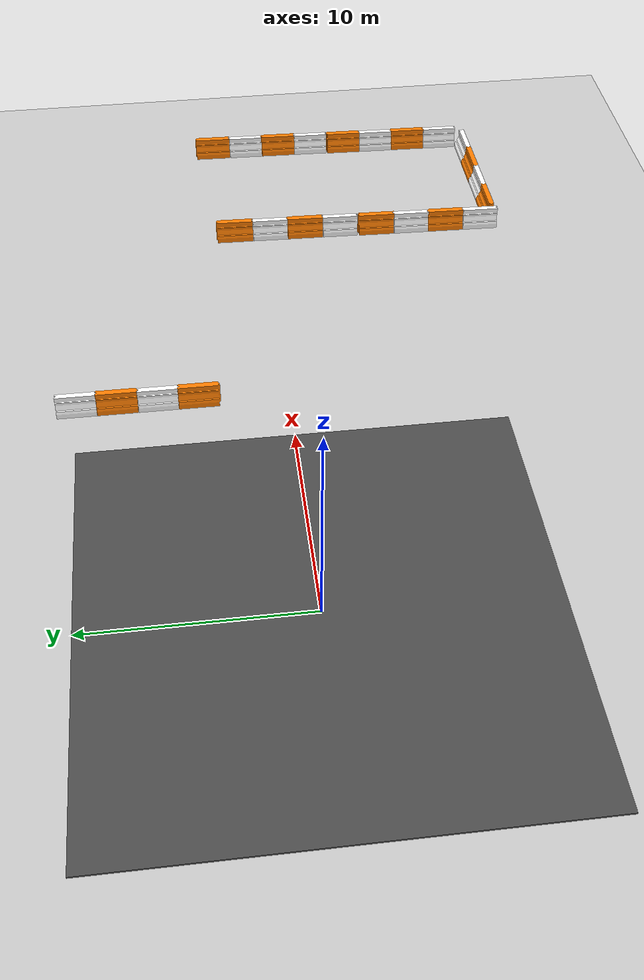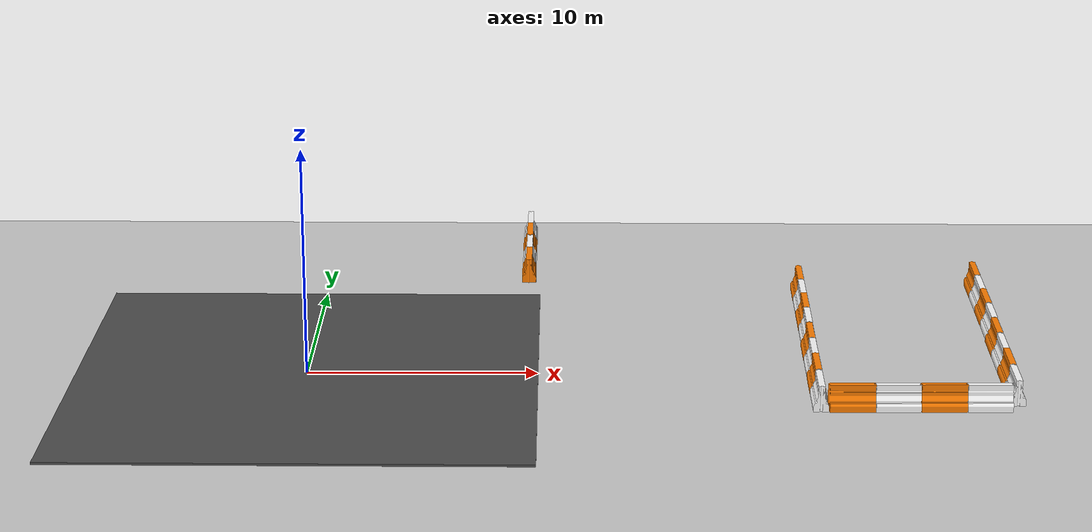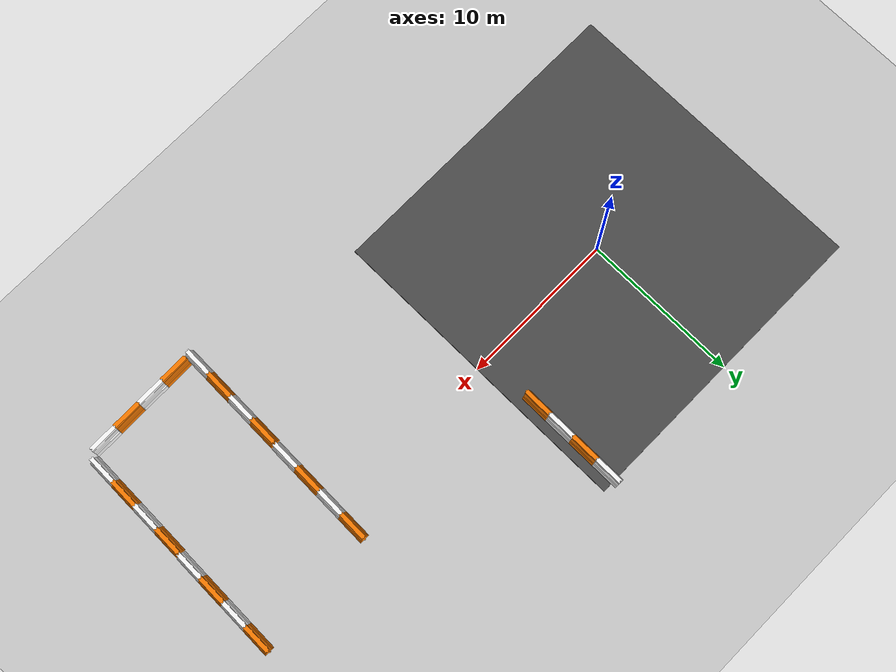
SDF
<sdf version="1.7">
 <world name="default">
  <model name="ground_plane">
   <static>1</static>
   <link name="link">
    <collision name="collision">
     <geometry><plane><normal>0 0 1</normal><size>100 100</size></plane></geometry>
     <surface><friction><ode><mu>100</mu><mu2>50</mu2></ode></friction></surface>
    </collision>
    <visual name="visual">
     <cast_shadows>0</cast_shadows>
     <geometry><plane><normal>0 0 1</normal><size>100 100</size></plane></geometry>
     <material>
      <script><uri>file://media/materials/scripts/gazebo.material</uri><name>Gazebo/Grey</name></script>
     </material>
    </visual>
   </link>
  </model>
  <model name="asphalt_plane">
   <static>1</static>
   <link name="link">
    <collision name="collision"><geometry><box><size>20 20 0.1</size></box></geometry></collision>
    <visual name="visual">
     <cast_shadows>0</cast_shadows>
     <geometry><box><size>20 20 0.1</size></box></geometry>
     <material>
      <script>
       <uri>model://asphalt_plane/materials/scripts</uri>
       <uri>model://asphalt_plane/materials/textures</uri>
       <name>vrc/asphalt</name>
      </script>
     </material>
    </visual>
   </link>
  </model>
  <model name="barrier_clone_clone">
   <link name="link">
    <pose>10.1496 5.51614 0 0 0 -0.785398</pose>
    <visual name="visual">
     <geometry>
      <mesh><uri>model://drc_practice_white_jersey_barrier/meshes/jersey_barrier.dae</uri></mesh>
     </geometry>
     <material><shader type="pixel"/></material>
    </visual>
    <collision name="collision">
     <geometry>
      <mesh>
       <uri>/home/ngc/.gazebo/models/drc_practice_white_jersey_barrier/meshes/jersey_barrier.dae</uri>
       <scale>1 1 1</scale>
      </mesh>
     </geometry>
     <surface>
      <friction>
       <ode><mu>1</mu><mu2>1</mu2><fdir1>0 0 0</fdir1><slip1>0</slip1><slip2>0</slip2></ode>
       <torsional>
        <coefficient>1</coefficient>
        <patch_radius>0</patch_radius>
        <surface_radius>0</surface_radius>
        <use_patch_radius>1</use_patch_radius>
        <ode><slip>0</slip></ode>
       </torsional>
      </friction>
      <bounce><restitution_coefficient>0</restitution_coefficient><threshold>1e+06</threshold></bounce>
      <contact>
       <collide_without_contact>0</collide_without_contact>
       <collide_without_contact_bitmask>1</collide_without_contact_bitmask>
       <collide_bitmask>1</collide_bitmask>
       <ode>
        <soft_cfm>0</soft_cfm>
        <soft_erp>0.2</soft_erp>
        <kp>1e+13</kp>
        <kd>1</kd>
        <max_vel>0.01</max_vel>
        <min_depth>0</min_depth>
       </ode>
       <bullet>
        <split_impulse>1</split_impulse>
        <split_impulse_penetration_threshold>-0.01</split_impulse_penetration_threshold>
        <soft_cfm>0</soft_cfm>
        <soft_erp>0.2</soft_erp>
        <kp>1e+13</kp>
        <kd>1</kd>
       </bullet>
      </contact>
     </surface>
    </collision>
   </link>
   <link name="five::link">
    <pose>6.3884 1.79074 0 0 0 -0.785398</pose>
    <visual name="visual">
     <geometry>
      <mesh><uri>model://drc_practice_orange_jersey_barrier/meshes/jersey_barrier.dae</uri></mesh>
     </geometry>
     <material><shader type="pixel"/></material>
    </visual>
    <collision name="collision">
     <geometry>
      <mesh>
       <uri>/home/ngc/.gazebo/models/drc_practice_orange_jersey_barrier/meshes/jersey_barrier.dae</uri>
       <scale>1 1 1</scale>
      </mesh>
     </geometry>
     <surface>
      <friction>
       <ode><mu>1</mu><mu2>1</mu2><fdir1>0 0 0</fdir1><slip1>0</slip1><slip2>0</slip2></ode>
       <torsional>
        <coefficient>1</coefficient>
        <patch_radius>0</patch_radius>
        <surface_radius>0</surface_radius>
        <use_patch_radius>1</use_patch_radius>
        <ode><slip>0</slip></ode>
       </torsional>
      </friction>
      <bounce><restitution_coefficient>0</restitution_coefficient><threshold>1e+06</threshold></bounce>
      <contact>
       <collide_without_contact>0</collide_without_contact>
       <collide_without_contact_bitmask>1</collide_without_contact_bitmask>
       <collide_bitmask>1</collide_bitmask>
       <ode>
        <soft_cfm>0</soft_cfm>
        <soft_erp>0.2</soft_erp>
        <kp>1e+13</kp>
        <kd>1</kd>
        <max_vel>0.01</max_vel>
        <min_depth>0</min_depth>
       </ode>
       <bullet>
        <split_impulse>1</split_impulse>
        <split_impulse_penetration_threshold>-0.01</split_impulse_penetration_threshold>
        <soft_cfm>0</soft_cfm>
        <soft_erp>0.2</soft_erp>
        <kp>1e+13</kp>
        <kd>1</kd>
       </bullet>
      </contact>
     </surface>
    </collision>
   </link>
   <link name="seven::link">
    <pose>8.89611 4.27529 0 0 0 -0.785398</pose>
    <visual name="visual">
     <geometry>
      <mesh><uri>model://drc_practice_orange_jersey_barrier/meshes/jersey_barrier.dae</uri></mesh>
     </geometry>
     <material><shader type="pixel"/></material>
    </visual>
    <collision name="collision">
     <geometry>
      <mesh>
       <uri>/home/ngc/.gazebo/models/drc_practice_orange_jersey_barrier/meshes/jersey_barrier.dae</uri>
       <scale>1 1 1</scale>
      </mesh>
     </geometry>
     <surface>
      <friction>
       <ode><mu>1</mu><mu2>1</mu2><fdir1>0 0 0</fdir1><slip1>0</slip1><slip2>0</slip2></ode>
       <torsional>
        <coefficient>1</coefficient>
        <patch_radius>0</patch_radius>
        <surface_radius>0</surface_radius>
        <use_patch_radius>1</use_patch_radius>
        <ode><slip>0</slip></ode>
       </torsional>
      </friction>
      <bounce><restitution_coefficient>0</restitution_coefficient><threshold>1e+06</threshold></bounce>
      <contact>
       <collide_without_contact>0</collide_without_contact>
       <collide_without_contact_bitmask>1</collide_without_contact_bitmask>
       <collide_bitmask>1</collide_bitmask>
       <ode>
        <soft_cfm>0</soft_cfm>
        <soft_erp>0.2</soft_erp>
        <kp>1e+13</kp>
        <kd>1</kd>
        <max_vel>0.01</max_vel>
        <min_depth>0</min_depth>
       </ode>
       <bullet>
        <split_impulse>1</split_impulse>
        <split_impulse_penetration_threshold>-0.01</split_impulse_penetration_threshold>
        <soft_cfm>0</soft_cfm>
        <soft_erp>0.2</soft_erp>
        <kp>1e+13</kp>
        <kd>1</kd>
       </bullet>
      </contact>
     </surface>
    </collision>
   </link>
   <link name="six::link">
    <pose>7.6423 3.03258 0 0 0 -0.785398</pose>
    <visual name="visual">
     <geometry>
      <mesh><uri>model://drc_practice_white_jersey_barrier/meshes/jersey_barrier.dae</uri></mesh>
     </geometry>
     <material><shader type="pixel"/></material>
    </visual>
    <collision name="collision">
     <geometry>
      <mesh>
       <uri>/home/ngc/.gazebo/models/drc_practice_white_jersey_barrier/meshes/jersey_barrier.dae</uri>
       <scale>1 1 1</scale>
      </mesh>
     </geometry>
     <surface>
      <friction>
       <ode><mu>1</mu><mu2>1</mu2><fdir1>0 0 0</fdir1><slip1>0</slip1><slip2>0</slip2></ode>
       <torsional>
        <coefficient>1</coefficient>
        <patch_radius>0</patch_radius>
        <surface_radius>0</surface_radius>
        <use_patch_radius>1</use_patch_radius>
        <ode><slip>0</slip></ode>
       </torsional>
      </friction>
      <bounce><restitution_coefficient>0</restitution_coefficient><threshold>1e+06</threshold></bounce>
      <contact>
       <collide_without_contact>0</collide_without_contact>
       <collide_without_contact_bitmask>1</collide_without_contact_bitmask>
       <collide_bitmask>1</collide_bitmask>
       <ode>
        <soft_cfm>0</soft_cfm>
        <soft_erp>0.2</soft_erp>
        <kp>1e+13</kp>
        <kd>1</kd>
        <max_vel>0.01</max_vel>
        <min_depth>0</min_depth>
       </ode>
       <bullet>
        <split_impulse>1</split_impulse>
        <split_impulse_penetration_threshold>-0.01</split_impulse_penetration_threshold>
        <soft_cfm>0</soft_cfm>
        <soft_erp>0.2</soft_erp>
        <kp>1e+13</kp>
        <kd>1</kd>
       </bullet>
      </contact>
     </surface>
    </collision>
   </link>
   <static>1</static>
   <pose>6.3342 -1.56565 3 0 -0 0.78886</pose>
  </model>
  <model name="barrier_clone_0_clone">
   <link name="link">
    <pose>10.1496 5.51614 0 0 0 -0.785398</pose>
    <visual name="visual">
     <geometry>
      <mesh><uri>model://drc_practice_white_jersey_barrier/meshes/jersey_barrier.dae</uri></mesh>
     </geometry>
     <material><shader type="pixel"/></material>
    </visual>
    <collision name="collision">
     <geometry>
      <mesh>
       <uri>/home/ngc/.gazebo/models/drc_practice_white_jersey_barrier/meshes/jersey_barrier.dae</uri>
       <scale>1 1 1</scale>
      </mesh>
     </geometry>
     <surface>
      <friction>
       <ode><mu>1</mu><mu2>1</mu2><fdir1>0 0 0</fdir1><slip1>0</slip1><slip2>0</slip2></ode>
       <torsional>
        <coefficient>1</coefficient>
        <patch_radius>0</patch_radius>
        <surface_radius>0</surface_radius>
        <use_patch_radius>1</use_patch_radius>
        <ode><slip>0</slip></ode>
       </torsional>
      </friction>
      <bounce><restitution_coefficient>0</restitution_coefficient><threshold>1e+06</threshold></bounce>
      <contact>
       <collide_without_contact>0</collide_without_contact>
       <collide_without_contact_bitmask>1</collide_without_contact_bitmask>
       <collide_bitmask>1</collide_bitmask>
       <ode>
        <soft_cfm>0</soft_cfm>
        <soft_erp>0.2</soft_erp>
        <kp>1e+13</kp>
        <kd>1</kd>
        <max_vel>0.01</max_vel>
        <min_depth>0</min_depth>
       </ode>
       <bullet>
        <split_impulse>1</split_impulse>
        <split_impulse_penetration_threshold>-0.01</split_impulse_penetration_threshold>
        <soft_cfm>0</soft_cfm>
        <soft_erp>0.2</soft_erp>
        <kp>1e+13</kp>
        <kd>1</kd>
       </bullet>
      </contact>
     </surface>
    </collision>
   </link>
   <link name="five::link">
    <pose>6.3884 1.79074 0 0 0 -0.785398</pose>
    <visual name="visual">
     <geometry>
      <mesh><uri>model://drc_practice_orange_jersey_barrier/meshes/jersey_barrier.dae</uri></mesh>
     </geometry>
     <material><shader type="pixel"/></material>
    </visual>
    <collision name="collision">
     <geometry>
      <mesh>
       <uri>/home/ngc/.gazebo/models/drc_practice_orange_jersey_barrier/meshes/jersey_barrier.dae</uri>
       <scale>1 1 1</scale>
      </mesh>
     </geometry>
     <surface>
      <friction>
       <ode><mu>1</mu><mu2>1</mu2><fdir1>0 0 0</fdir1><slip1>0</slip1><slip2>0</slip2></ode>
       <torsional>
        <coefficient>1</coefficient>
        <patch_radius>0</patch_radius>
        <surface_radius>0</surface_radius>
        <use_patch_radius>1</use_patch_radius>
        <ode><slip>0</slip></ode>
       </torsional>
      </friction>
      <bounce><restitution_coefficient>0</restitution_coefficient><threshold>1e+06</threshold></bounce>
      <contact>
       <collide_without_contact>0</collide_without_contact>
       <collide_without_contact_bitmask>1</collide_without_contact_bitmask>
       <collide_bitmask>1</collide_bitmask>
       <ode>
        <soft_cfm>0</soft_cfm>
        <soft_erp>0.2</soft_erp>
        <kp>1e+13</kp>
        <kd>1</kd>
        <max_vel>0.01</max_vel>
        <min_depth>0</min_depth>
       </ode>
       <bullet>
        <split_impulse>1</split_impulse>
        <split_impulse_penetration_threshold>-0.01</split_impulse_penetration_threshold>
        <soft_cfm>0</soft_cfm>
        <soft_erp>0.2</soft_erp>
        <kp>1e+13</kp>
        <kd>1</kd>
       </bullet>
      </contact>
     </surface>
    </collision>
   </link>
   <link name="seven::link">
    <pose>8.89611 4.27529 0 0 0 -0.785398</pose>
    <visual name="visual">
     <geometry>
      <mesh><uri>model://drc_practice_orange_jersey_barrier/meshes/jersey_barrier.dae</uri></mesh>
     </geometry>
     <material><shader type="pixel"/></material>
    </visual>
    <collision name="collision">
     <geometry>
      <mesh>
       <uri>/home/ngc/.gazebo/models/drc_practice_orange_jersey_barrier/meshes/jersey_barrier.dae</uri>
       <scale>1 1 1</scale>
      </mesh>
     </geometry>
     <surface>
      <friction>
       <ode><mu>1</mu><mu2>1</mu2><fdir1>0 0 0</fdir1><slip1>0</slip1><slip2>0</slip2></ode>
       <torsional>
        <coefficient>1</coefficient>
        <patch_radius>0</patch_radius>
        <surface_radius>0</surface_radius>
        <use_patch_radius>1</use_patch_radius>
        <ode><slip>0</slip></ode>
       </torsional>
      </friction>
      <bounce><restitution_coefficient>0</restitution_coefficient><threshold>1e+06</threshold></bounce>
      <contact>
       <collide_without_contact>0</collide_without_contact>
       <collide_without_contact_bitmask>1</collide_without_contact_bitmask>
       <collide_bitmask>1</collide_bitmask>
       <ode>
        <soft_cfm>0</soft_cfm>
        <soft_erp>0.2</soft_erp>
        <kp>1e+13</kp>
        <kd>1</kd>
        <max_vel>0.01</max_vel>
        <min_depth>0</min_depth>
       </ode>
       <bullet>
        <split_impulse>1</split_impulse>
        <split_impulse_penetration_threshold>-0.01</split_impulse_penetration_threshold>
        <soft_cfm>0</soft_cfm>
        <soft_erp>0.2</soft_erp>
        <kp>1e+13</kp>
        <kd>1</kd>
       </bullet>
      </contact>
     </surface>
    </collision>
   </link>
   <link name="six::link">
    <pose>7.6423 3.03258 0 0 0 -0.785398</pose>
    <visual name="visual">
     <geometry>
      <mesh><uri>model://drc_practice_white_jersey_barrier/meshes/jersey_barrier.dae</uri></mesh>
     </geometry>
     <material><shader type="pixel"/></material>
    </visual>
    <collision name="collision">
     <geometry>
      <mesh>
       <uri>/home/ngc/.gazebo/models/drc_practice_white_jersey_barrier/meshes/jersey_barrier.dae</uri>
       <scale>1 1 1</scale>
      </mesh>
     </geometry>
     <surface>
      <friction>
       <ode><mu>1</mu><mu2>1</mu2><fdir1>0 0 0</fdir1><slip1>0</slip1><slip2>0</slip2></ode>
       <torsional>
        <coefficient>1</coefficient>
        <patch_radius>0</patch_radius>
        <surface_radius>0</surface_radius>
        <use_patch_radius>1</use_patch_radius>
        <ode><slip>0</slip></ode>
       </torsional>
      </friction>
      <bounce><restitution_coefficient>0</restitution_coefficient><threshold>1e+06</threshold></bounce>
      <contact>
       <collide_without_contact>0</collide_without_contact>
       <collide_without_contact_bitmask>1</collide_without_contact_bitmask>
       <collide_bitmask>1</collide_bitmask>
       <ode>
        <soft_cfm>0</soft_cfm>
        <soft_erp>0.2</soft_erp>
        <kp>1e+13</kp>
        <kd>1</kd>
        <max_vel>0.01</max_vel>
        <min_depth>0</min_depth>
       </ode>
       <bullet>
        <split_impulse>1</split_impulse>
        <split_impulse_penetration_threshold>-0.01</split_impulse_penetration_threshold>
        <soft_cfm>0</soft_cfm>
        <soft_erp>0.2</soft_erp>
        <kp>1e+13</kp>
        <kd>1</kd>
       </bullet>
      </contact>
     </surface>
    </collision>
   </link>
   <static>1</static>
   <pose>32.3527 8.10174 3 0 0 -2.37547</pose>
  </model>
  <model name="barrier_clone_0_clone_clone">
   <link name="link">
    <pose>10.1496 5.51614 0 0 0 -0.785398</pose>
    <visual name="visual">
     <geometry>
      <mesh><uri>model://drc_practice_white_jersey_barrier/meshes/jersey_barrier.dae</uri></mesh>
     </geometry>
     <material><shader type="pixel"/></material>
    </visual>
    <collision name="collision">
     <geometry>
      <mesh>
       <uri>/home/ngc/.gazebo/models/drc_practice_white_jersey_barrier/meshes/jersey_barrier.dae</uri>
       <scale>1 1 1</scale>
      </mesh>
     </geometry>
     <surface>
      <friction>
       <ode><mu>1</mu><mu2>1</mu2><fdir1>0 0 0</fdir1><slip1>0</slip1><slip2>0</slip2></ode>
       <torsional>
        <coefficient>1</coefficient>
        <patch_radius>0</patch_radius>
        <surface_radius>0</surface_radius>
        <use_patch_radius>1</use_patch_radius>
        <ode><slip>0</slip></ode>
       </torsional>
      </friction>
      <bounce><restitution_coefficient>0</restitution_coefficient><threshold>1e+06</threshold></bounce>
      <contact>
       <collide_without_contact>0</collide_without_contact>
       <collide_without_contact_bitmask>1</collide_without_contact_bitmask>
       <collide_bitmask>1</collide_bitmask>
       <ode>
        <soft_cfm>0</soft_cfm>
        <soft_erp>0.2</soft_erp>
        <kp>1e+13</kp>
        <kd>1</kd>
        <max_vel>0.01</max_vel>
        <min_depth>0</min_depth>
       </ode>
       <bullet>
        <split_impulse>1</split_impulse>
        <split_impulse_penetration_threshold>-0.01</split_impulse_penetration_threshold>
        <soft_cfm>0</soft_cfm>
        <soft_erp>0.2</soft_erp>
        <kp>1e+13</kp>
        <kd>1</kd>
       </bullet>
      </contact>
     </surface>
    </collision>
   </link>
   <link name="five::link">
    <pose>6.3884 1.79074 0 0 0 -0.785398</pose>
    <visual name="visual">
     <geometry>
      <mesh><uri>model://drc_practice_orange_jersey_barrier/meshes/jersey_barrier.dae</uri></mesh>
     </geometry>
     <material><shader type="pixel"/></material>
    </visual>
    <collision name="collision">
     <geometry>
      <mesh>
       <uri>/home/ngc/.gazebo/models/drc_practice_orange_jersey_barrier/meshes/jersey_barrier.dae</uri>
       <scale>1 1 1</scale>
      </mesh>
     </geometry>
     <surface>
      <friction>
       <ode><mu>1</mu><mu2>1</mu2><fdir1>0 0 0</fdir1><slip1>0</slip1><slip2>0</slip2></ode>
       <torsional>
        <coefficient>1</coefficient>
        <patch_radius>0</patch_radius>
        <surface_radius>0</surface_radius>
        <use_patch_radius>1</use_patch_radius>
        <ode><slip>0</slip></ode>
       </torsional>
      </friction>
      <bounce><restitution_coefficient>0</restitution_coefficient><threshold>1e+06</threshold></bounce>
      <contact>
       <collide_without_contact>0</collide_without_contact>
       <collide_without_contact_bitmask>1</collide_without_contact_bitmask>
       <collide_bitmask>1</collide_bitmask>
       <ode>
        <soft_cfm>0</soft_cfm>
        <soft_erp>0.2</soft_erp>
        <kp>1e+13</kp>
        <kd>1</kd>
        <max_vel>0.01</max_vel>
        <min_depth>0</min_depth>
       </ode>
       <bullet>
        <split_impulse>1</split_impulse>
        <split_impulse_penetration_threshold>-0.01</split_impulse_penetration_threshold>
        <soft_cfm>0</soft_cfm>
        <soft_erp>0.2</soft_erp>
        <kp>1e+13</kp>
        <kd>1</kd>
       </bullet>
      </contact>
     </surface>
    </collision>
   </link>
   <link name="seven::link">
    <pose>8.89611 4.27529 0 0 0 -0.785398</pose>
    <visual name="visual">
     <geometry>
      <mesh><uri>model://drc_practice_orange_jersey_barrier/meshes/jersey_barrier.dae</uri></mesh>
     </geometry>
     <material><shader type="pixel"/></material>
    </visual>
    <collision name="collision">
     <geometry>
      <mesh>
       <uri>/home/ngc/.gazebo/models/drc_practice_orange_jersey_barrier/meshes/jersey_barrier.dae</uri>
       <scale>1 1 1</scale>
      </mesh>
     </geometry>
     <surface>
      <friction>
       <ode><mu>1</mu><mu2>1</mu2><fdir1>0 0 0</fdir1><slip1>0</slip1><slip2>0</slip2></ode>
       <torsional>
        <coefficient>1</coefficient>
        <patch_radius>0</patch_radius>
        <surface_radius>0</surface_radius>
        <use_patch_radius>1</use_patch_radius>
        <ode><slip>0</slip></ode>
       </torsional>
      </friction>
      <bounce><restitution_coefficient>0</restitution_coefficient><threshold>1e+06</threshold></bounce>
      <contact>
       <collide_without_contact>0</collide_without_contact>
       <collide_without_contact_bitmask>1</collide_without_contact_bitmask>
       <collide_bitmask>1</collide_bitmask>
       <ode>
        <soft_cfm>0</soft_cfm>
        <soft_erp>0.2</soft_erp>
        <kp>1e+13</kp>
        <kd>1</kd>
        <max_vel>0.01</max_vel>
        <min_depth>0</min_depth>
       </ode>
       <bullet>
        <split_impulse>1</split_impulse>
        <split_impulse_penetration_threshold>-0.01</split_impulse_penetration_threshold>
        <soft_cfm>0</soft_cfm>
        <soft_erp>0.2</soft_erp>
        <kp>1e+13</kp>
        <kd>1</kd>
       </bullet>
      </contact>
     </surface>
    </collision>
   </link>
   <link name="six::link">
    <pose>7.6423 3.03258 0 0 0 -0.785398</pose>
    <visual name="visual">
     <geometry>
      <mesh><uri>model://drc_practice_white_jersey_barrier/meshes/jersey_barrier.dae</uri></mesh>
     </geometry>
     <material><shader type="pixel"/></material>
    </visual>
    <collision name="collision">
     <geometry>
      <mesh>
       <uri>/home/ngc/.gazebo/models/drc_practice_white_jersey_barrier/meshes/jersey_barrier.dae</uri>
       <scale>1 1 1</scale>
      </mesh>
     </geometry>
     <surface>
      <friction>
       <ode><mu>1</mu><mu2>1</mu2><fdir1>0 0 0</fdir1><slip1>0</slip1><slip2>0</slip2></ode>
       <torsional>
        <coefficient>1</coefficient>
        <patch_radius>0</patch_radius>
        <surface_radius>0</surface_radius>
        <use_patch_radius>1</use_patch_radius>
        <ode><slip>0</slip></ode>
       </torsional>
      </friction>
      <bounce><restitution_coefficient>0</restitution_coefficient><threshold>1e+06</threshold></bounce>
      <contact>
       <collide_without_contact>0</collide_without_contact>
       <collide_without_contact_bitmask>1</collide_without_contact_bitmask>
       <collide_bitmask>1</collide_bitmask>
       <ode>
        <soft_cfm>0</soft_cfm>
        <soft_erp>0.2</soft_erp>
        <kp>1e+13</kp>
        <kd>1</kd>
        <max_vel>0.01</max_vel>
        <min_depth>0</min_depth>
       </ode>
       <bullet>
        <split_impulse>1</split_impulse>
        <split_impulse_penetration_threshold>-0.01</split_impulse_penetration_threshold>
        <soft_cfm>0</soft_cfm>
        <soft_erp>0.2</soft_erp>
        <kp>1e+13</kp>
        <kd>1</kd>
       </bullet>
      </contact>
     </surface>
    </collision>
   </link>
   <static>1</static>
   <pose>24.6759 7.47624 3 0 0 -2.37547</pose>
  </model>
  <model name="barrier_clone_0_clone_clone_clone">
   <link name="link">
    <pose>10.1496 5.51614 0 0 0 -0.785398</pose>
    <visual name="visual">
     <geometry>
      <mesh><uri>model://drc_practice_white_jersey_barrier/meshes/jersey_barrier.dae</uri></mesh>
     </geometry>
     <material><shader type="pixel"/></material>
    </visual>
    <collision name="collision">
     <geometry>
      <mesh>
       <uri>/home/ngc/.gazebo/models/drc_practice_white_jersey_barrier/meshes/jersey_barrier.dae</uri>
       <scale>1 1 1</scale>
      </mesh>
     </geometry>
     <surface>
      <friction>
       <ode><mu>1</mu><mu2>1</mu2><fdir1>0 0 0</fdir1><slip1>0</slip1><slip2>0</slip2></ode>
       <torsional>
        <coefficient>1</coefficient>
        <patch_radius>0</patch_radius>
        <surface_radius>0</surface_radius>
        <use_patch_radius>1</use_patch_radius>
        <ode><slip>0</slip></ode>
       </torsional>
      </friction>
      <bounce><restitution_coefficient>0</restitution_coefficient><threshold>1e+06</threshold></bounce>
      <contact>
       <collide_without_contact>0</collide_without_contact>
       <collide_without_contact_bitmask>1</collide_without_contact_bitmask>
       <collide_bitmask>1</collide_bitmask>
       <ode>
        <soft_cfm>0</soft_cfm>
        <soft_erp>0.2</soft_erp>
        <kp>1e+13</kp>
        <kd>1</kd>
        <max_vel>0.01</max_vel>
        <min_depth>0</min_depth>
       </ode>
       <bullet>
        <split_impulse>1</split_impulse>
        <split_impulse_penetration_threshold>-0.01</split_impulse_penetration_threshold>
        <soft_cfm>0</soft_cfm>
        <soft_erp>0.2</soft_erp>
        <kp>1e+13</kp>
        <kd>1</kd>
       </bullet>
      </contact>
     </surface>
    </collision>
   </link>
   <link name="five::link">
    <pose>6.3884 1.79074 0 0 0 -0.785398</pose>
    <visual name="visual">
     <geometry>
      <mesh><uri>model://drc_practice_orange_jersey_barrier/meshes/jersey_barrier.dae</uri></mesh>
     </geometry>
     <material><shader type="pixel"/></material>
    </visual>
    <collision name="collision">
     <geometry>
      <mesh>
       <uri>/home/ngc/.gazebo/models/drc_practice_orange_jersey_barrier/meshes/jersey_barrier.dae</uri>
       <scale>1 1 1</scale>
      </mesh>
     </geometry>
     <surface>
      <friction>
       <ode><mu>1</mu><mu2>1</mu2><fdir1>0 0 0</fdir1><slip1>0</slip1><slip2>0</slip2></ode>
       <torsional>
        <coefficient>1</coefficient>
        <patch_radius>0</patch_radius>
        <surface_radius>0</surface_radius>
        <use_patch_radius>1</use_patch_radius>
        <ode><slip>0</slip></ode>
       </torsional>
      </friction>
      <bounce><restitution_coefficient>0</restitution_coefficient><threshold>1e+06</threshold></bounce>
      <contact>
       <collide_without_contact>0</collide_without_contact>
       <collide_without_contact_bitmask>1</collide_without_contact_bitmask>
       <collide_bitmask>1</collide_bitmask>
       <ode>
        <soft_cfm>0</soft_cfm>
        <soft_erp>0.2</soft_erp>
        <kp>1e+13</kp>
        <kd>1</kd>
        <max_vel>0.01</max_vel>
        <min_depth>0</min_depth>
       </ode>
       <bullet>
        <split_impulse>1</split_impulse>
        <split_impulse_penetration_threshold>-0.01</split_impulse_penetration_threshold>
        <soft_cfm>0</soft_cfm>
        <soft_erp>0.2</soft_erp>
        <kp>1e+13</kp>
        <kd>1</kd>
       </bullet>
      </contact>
     </surface>
    </collision>
   </link>
   <link name="seven::link">
    <pose>8.89611 4.27529 0 0 0 -0.785398</pose>
    <visual name="visual">
     <geometry>
      <mesh><uri>model://drc_practice_orange_jersey_barrier/meshes/jersey_barrier.dae</uri></mesh>
     </geometry>
     <material><shader type="pixel"/></material>
    </visual>
    <collision name="collision">
     <geometry>
      <mesh>
       <uri>/home/ngc/.gazebo/models/drc_practice_orange_jersey_barrier/meshes/jersey_barrier.dae</uri>
       <scale>1 1 1</scale>
      </mesh>
     </geometry>
     <surface>
      <friction>
       <ode><mu>1</mu><mu2>1</mu2><fdir1>0 0 0</fdir1><slip1>0</slip1><slip2>0</slip2></ode>
       <torsional>
        <coefficient>1</coefficient>
        <patch_radius>0</patch_radius>
        <surface_radius>0</surface_radius>
        <use_patch_radius>1</use_patch_radius>
        <ode><slip>0</slip></ode>
       </torsional>
      </friction>
      <bounce><restitution_coefficient>0</restitution_coefficient><threshold>1e+06</threshold></bounce>
      <contact>
       <collide_without_contact>0</collide_without_contact>
       <collide_without_contact_bitmask>1</collide_without_contact_bitmask>
       <collide_bitmask>1</collide_bitmask>
       <ode>
        <soft_cfm>0</soft_cfm>
        <soft_erp>0.2</soft_erp>
        <kp>1e+13</kp>
        <kd>1</kd>
        <max_vel>0.01</max_vel>
        <min_depth>0</min_depth>
       </ode>
       <bullet>
        <split_impulse>1</split_impulse>
        <split_impulse_penetration_threshold>-0.01</split_impulse_penetration_threshold>
        <soft_cfm>0</soft_cfm>
        <soft_erp>0.2</soft_erp>
        <kp>1e+13</kp>
        <kd>1</kd>
       </bullet>
      </contact>
     </surface>
    </collision>
   </link>
   <link name="six::link">
    <pose>7.6423 3.03258 0 0 0 -0.785398</pose>
    <visual name="visual">
     <geometry>
      <mesh><uri>model://drc_practice_white_jersey_barrier/meshes/jersey_barrier.dae</uri></mesh>
     </geometry>
     <material><shader type="pixel"/></material>
    </visual>
    <collision name="collision">
     <geometry>
      <mesh>
       <uri>/home/ngc/.gazebo/models/drc_practice_white_jersey_barrier/meshes/jersey_barrier.dae</uri>
       <scale>1 1 1</scale>
      </mesh>
     </geometry>
     <surface>
      <friction>
       <ode><mu>1</mu><mu2>1</mu2><fdir1>0 0 0</fdir1><slip1>0</slip1><slip2>0</slip2></ode>
       <torsional>
        <coefficient>1</coefficient>
        <patch_radius>0</patch_radius>
        <surface_radius>0</surface_radius>
        <use_patch_radius>1</use_patch_radius>
        <ode><slip>0</slip></ode>
       </torsional>
      </friction>
      <bounce><restitution_coefficient>0</restitution_coefficient><threshold>1e+06</threshold></bounce>
      <contact>
       <collide_without_contact>0</collide_without_contact>
       <collide_without_contact_bitmask>1</collide_without_contact_bitmask>
       <collide_bitmask>1</collide_bitmask>
       <ode>
        <soft_cfm>0</soft_cfm>
        <soft_erp>0.2</soft_erp>
        <kp>1e+13</kp>
        <kd>1</kd>
        <max_vel>0.01</max_vel>
        <min_depth>0</min_depth>
       </ode>
       <bullet>
        <split_impulse>1</split_impulse>
        <split_impulse_penetration_threshold>-0.01</split_impulse_penetration_threshold>
        <soft_cfm>0</soft_cfm>
        <soft_erp>0.2</soft_erp>
        <kp>1e+13</kp>
        <kd>1</kd>
       </bullet>
      </contact>
     </surface>
    </collision>
   </link>
   <static>1</static>
   <pose>16.3245 -8.18038 3 0 0 -0.764177</pose>
  </model>
  <model name="barrier_clone_0_clone_clone_clone_0">
   <link name="link">
    <pose>10.1496 5.51614 0 0 0 -0.785398</pose>
    <visual name="visual">
     <geometry>
      <mesh><uri>model://drc_practice_white_jersey_barrier/meshes/jersey_barrier.dae</uri></mesh>
     </geometry>
     <material><shader type="pixel"/></material>
    </visual>
    <collision name="collision">
     <geometry>
      <mesh>
       <uri>/home/ngc/.gazebo/models/drc_practice_white_jersey_barrier/meshes/jersey_barrier.dae</uri>
       <scale>1 1 1</scale>
      </mesh>
     </geometry>
     <surface>
      <friction>
       <ode><mu>1</mu><mu2>1</mu2><fdir1>0 0 0</fdir1><slip1>0</slip1><slip2>0</slip2></ode>
       <torsional>
        <coefficient>1</coefficient>
        <patch_radius>0</patch_radius>
        <surface_radius>0</surface_radius>
        <use_patch_radius>1</use_patch_radius>
        <ode><slip>0</slip></ode>
       </torsional>
      </friction>
      <bounce><restitution_coefficient>0</restitution_coefficient><threshold>1e+06</threshold></bounce>
      <contact>
       <collide_without_contact>0</collide_without_contact>
       <collide_without_contact_bitmask>1</collide_without_contact_bitmask>
       <collide_bitmask>1</collide_bitmask>
       <ode>
        <soft_cfm>0</soft_cfm>
        <soft_erp>0.2</soft_erp>
        <kp>1e+13</kp>
        <kd>1</kd>
        <max_vel>0.01</max_vel>
        <min_depth>0</min_depth>
       </ode>
       <bullet>
        <split_impulse>1</split_impulse>
        <split_impulse_penetration_threshold>-0.01</split_impulse_penetration_threshold>
        <soft_cfm>0</soft_cfm>
        <soft_erp>0.2</soft_erp>
        <kp>1e+13</kp>
        <kd>1</kd>
       </bullet>
      </contact>
     </surface>
    </collision>
   </link>
   <link name="five::link">
    <pose>6.3884 1.79074 0 0 0 -0.785398</pose>
    <visual name="visual">
     <geometry>
      <mesh><uri>model://drc_practice_orange_jersey_barrier/meshes/jersey_barrier.dae</uri></mesh>
     </geometry>
     <material><shader type="pixel"/></material>
    </visual>
    <collision name="collision">
     <geometry>
      <mesh>
       <uri>/home/ngc/.gazebo/models/drc_practice_orange_jersey_barrier/meshes/jersey_barrier.dae</uri>
       <scale>1 1 1</scale>
      </mesh>
     </geometry>
     <surface>
      <friction>
       <ode><mu>1</mu><mu2>1</mu2><fdir1>0 0 0</fdir1><slip1>0</slip1><slip2>0</slip2></ode>
       <torsional>
        <coefficient>1</coefficient>
        <patch_radius>0</patch_radius>
        <surface_radius>0</surface_radius>
        <use_patch_radius>1</use_patch_radius>
        <ode><slip>0</slip></ode>
       </torsional>
      </friction>
      <bounce><restitution_coefficient>0</restitution_coefficient><threshold>1e+06</threshold></bounce>
      <contact>
       <collide_without_contact>0</collide_without_contact>
       <collide_without_contact_bitmask>1</collide_without_contact_bitmask>
       <collide_bitmask>1</collide_bitmask>
       <ode>
        <soft_cfm>0</soft_cfm>
        <soft_erp>0.2</soft_erp>
        <kp>1e+13</kp>
        <kd>1</kd>
        <max_vel>0.01</max_vel>
        <min_depth>0</min_depth>
       </ode>
       <bullet>
        <split_impulse>1</split_impulse>
        <split_impulse_penetration_threshold>-0.01</split_impulse_penetration_threshold>
        <soft_cfm>0</soft_cfm>
        <soft_erp>0.2</soft_erp>
        <kp>1e+13</kp>
        <kd>1</kd>
       </bullet>
      </contact>
     </surface>
    </collision>
   </link>
   <link name="seven::link">
    <pose>8.89611 4.27529 0 0 0 -0.785398</pose>
    <visual name="visual">
     <geometry>
      <mesh><uri>model://drc_practice_orange_jersey_barrier/meshes/jersey_barrier.dae</uri></mesh>
     </geometry>
     <material><shader type="pixel"/></material>
    </visual>
    <collision name="collision">
     <geometry>
      <mesh>
       <uri>/home/ngc/.gazebo/models/drc_practice_orange_jersey_barrier/meshes/jersey_barrier.dae</uri>
       <scale>1 1 1</scale>
      </mesh>
     </geometry>
     <surface>
      <friction>
       <ode><mu>1</mu><mu2>1</mu2><fdir1>0 0 0</fdir1><slip1>0</slip1><slip2>0</slip2></ode>
       <torsional>
        <coefficient>1</coefficient>
        <patch_radius>0</patch_radius>
        <surface_radius>0</surface_radius>
        <use_patch_radius>1</use_patch_radius>
        <ode><slip>0</slip></ode>
       </torsional>
      </friction>
      <bounce><restitution_coefficient>0</restitution_coefficient><threshold>1e+06</threshold></bounce>
      <contact>
       <collide_without_contact>0</collide_without_contact>
       <collide_without_contact_bitmask>1</collide_without_contact_bitmask>
       <collide_bitmask>1</collide_bitmask>
       <ode>
        <soft_cfm>0</soft_cfm>
        <soft_erp>0.2</soft_erp>
        <kp>1e+13</kp>
        <kd>1</kd>
        <max_vel>0.01</max_vel>
        <min_depth>0</min_depth>
       </ode>
       <bullet>
        <split_impulse>1</split_impulse>
        <split_impulse_penetration_threshold>-0.01</split_impulse_penetration_threshold>
        <soft_cfm>0</soft_cfm>
        <soft_erp>0.2</soft_erp>
        <kp>1e+13</kp>
        <kd>1</kd>
       </bullet>
      </contact>
     </surface>
    </collision>
   </link>
   <link name="six::link">
    <pose>7.6423 3.03258 0 0 0 -0.785398</pose>
    <visual name="visual">
     <geometry>
      <mesh><uri>model://drc_practice_white_jersey_barrier/meshes/jersey_barrier.dae</uri></mesh>
     </geometry>
     <material><shader type="pixel"/></material>
    </visual>
    <collision name="collision">
     <geometry>
      <mesh>
       <uri>/home/ngc/.gazebo/models/drc_practice_white_jersey_barrier/meshes/jersey_barrier.dae</uri>
       <scale>1 1 1</scale>
      </mesh>
     </geometry>
     <surface>
      <friction>
       <ode><mu>1</mu><mu2>1</mu2><fdir1>0 0 0</fdir1><slip1>0</slip1><slip2>0</slip2></ode>
       <torsional>
        <coefficient>1</coefficient>
        <patch_radius>0</patch_radius>
        <surface_radius>0</surface_radius>
        <use_patch_radius>1</use_patch_radius>
        <ode><slip>0</slip></ode>
       </torsional>
      </friction>
      <bounce><restitution_coefficient>0</restitution_coefficient><threshold>1e+06</threshold></bounce>
      <contact>
       <collide_without_contact>0</collide_without_contact>
       <collide_without_contact_bitmask>1</collide_without_contact_bitmask>
       <collide_bitmask>1</collide_bitmask>
       <ode>
        <soft_cfm>0</soft_cfm>
        <soft_erp>0.2</soft_erp>
        <kp>1e+13</kp>
        <kd>1</kd>
        <max_vel>0.01</max_vel>
        <min_depth>0</min_depth>
       </ode>
       <bullet>
        <split_impulse>1</split_impulse>
        <split_impulse_penetration_threshold>-0.01</split_impulse_penetration_threshold>
        <soft_cfm>0</soft_cfm>
        <soft_erp>0.2</soft_erp>
        <kp>1e+13</kp>
        <kd>1</kd>
       </bullet>
      </contact>
     </surface>
    </collision>
   </link>
   <static>1</static>
   <pose>24.4791 0.339429 3 0 0 -2.37547</pose>
  </model>
  <model name="barrier_clone_0_clone_clone_0">
   <link name="link">
    <pose>10.1496 5.51614 0 0 0 -0.785398</pose>
    <visual name="visual">
     <geometry>
      <mesh><uri>model://drc_practice_white_jersey_barrier/meshes/jersey_barrier.dae</uri></mesh>
     </geometry>
     <material><shader type="pixel"/></material>
    </visual>
    <collision name="collision">
     <geometry>
      <mesh>
       <uri>/home/ngc/.gazebo/models/drc_practice_white_jersey_barrier/meshes/jersey_barrier.dae</uri>
       <scale>1 1 1</scale>
      </mesh>
     </geometry>
     <surface>
      <friction>
       <ode><mu>1</mu><mu2>1</mu2><fdir1>0 0 0</fdir1><slip1>0</slip1><slip2>0</slip2></ode>
       <torsional>
        <coefficient>1</coefficient>
        <patch_radius>0</patch_radius>
        <surface_radius>0</surface_radius>
        <use_patch_radius>1</use_patch_radius>
        <ode><slip>0</slip></ode>
       </torsional>
      </friction>
      <bounce><restitution_coefficient>0</restitution_coefficient><threshold>1e+06</threshold></bounce>
      <contact>
       <collide_without_contact>0</collide_without_contact>
       <collide_without_contact_bitmask>1</collide_without_contact_bitmask>
       <collide_bitmask>1</collide_bitmask>
       <ode>
        <soft_cfm>0</soft_cfm>
        <soft_erp>0.2</soft_erp>
        <kp>1e+13</kp>
        <kd>1</kd>
        <max_vel>0.01</max_vel>
        <min_depth>0</min_depth>
       </ode>
       <bullet>
        <split_impulse>1</split_impulse>
        <split_impulse_penetration_threshold>-0.01</split_impulse_penetration_threshold>
        <soft_cfm>0</soft_cfm>
        <soft_erp>0.2</soft_erp>
        <kp>1e+13</kp>
        <kd>1</kd>
       </bullet>
      </contact>
     </surface>
    </collision>
   </link>
   <link name="five::link">
    <pose>6.3884 1.79074 0 0 0 -0.785398</pose>
    <visual name="visual">
     <geometry>
      <mesh><uri>model://drc_practice_orange_jersey_barrier/meshes/jersey_barrier.dae</uri></mesh>
     </geometry>
     <material><shader type="pixel"/></material>
    </visual>
    <collision name="collision">
     <geometry>
      <mesh>
       <uri>/home/ngc/.gazebo/models/drc_practice_orange_jersey_barrier/meshes/jersey_barrier.dae</uri>
       <scale>1 1 1</scale>
      </mesh>
     </geometry>
     <surface>
      <friction>
       <ode><mu>1</mu><mu2>1</mu2><fdir1>0 0 0</fdir1><slip1>0</slip1><slip2>0</slip2></ode>
       <torsional>
        <coefficient>1</coefficient>
        <patch_radius>0</patch_radius>
        <surface_radius>0</surface_radius>
        <use_patch_radius>1</use_patch_radius>
        <ode><slip>0</slip></ode>
       </torsional>
      </friction>
      <bounce><restitution_coefficient>0</restitution_coefficient><threshold>1e+06</threshold></bounce>
      <contact>
       <collide_without_contact>0</collide_without_contact>
       <collide_without_contact_bitmask>1</collide_without_contact_bitmask>
       <collide_bitmask>1</collide_bitmask>
       <ode>
        <soft_cfm>0</soft_cfm>
        <soft_erp>0.2</soft_erp>
        <kp>1e+13</kp>
        <kd>1</kd>
        <max_vel>0.01</max_vel>
        <min_depth>0</min_depth>
       </ode>
       <bullet>
        <split_impulse>1</split_impulse>
        <split_impulse_penetration_threshold>-0.01</split_impulse_penetration_threshold>
        <soft_cfm>0</soft_cfm>
        <soft_erp>0.2</soft_erp>
        <kp>1e+13</kp>
        <kd>1</kd>
       </bullet>
      </contact>
     </surface>
    </collision>
   </link>
   <link name="seven::link">
    <pose>8.89611 4.27529 0 0 0 -0.785398</pose>
    <visual name="visual">
     <geometry>
      <mesh><uri>model://drc_practice_orange_jersey_barrier/meshes/jersey_barrier.dae</uri></mesh>
     </geometry>
     <material><shader type="pixel"/></material>
    </visual>
    <collision name="collision">
     <geometry>
      <mesh>
       <uri>/home/ngc/.gazebo/models/drc_practice_orange_jersey_barrier/meshes/jersey_barrier.dae</uri>
       <scale>1 1 1</scale>
      </mesh>
     </geometry>
     <surface>
      <friction>
       <ode><mu>1</mu><mu2>1</mu2><fdir1>0 0 0</fdir1><slip1>0</slip1><slip2>0</slip2></ode>
       <torsional>
        <coefficient>1</coefficient>
        <patch_radius>0</patch_radius>
        <surface_radius>0</surface_radius>
        <use_patch_radius>1</use_patch_radius>
        <ode><slip>0</slip></ode>
       </torsional>
      </friction>
      <bounce><restitution_coefficient>0</restitution_coefficient><threshold>1e+06</threshold></bounce>
      <contact>
       <collide_without_contact>0</collide_without_contact>
       <collide_without_contact_bitmask>1</collide_without_contact_bitmask>
       <collide_bitmask>1</collide_bitmask>
       <ode>
        <soft_cfm>0</soft_cfm>
        <soft_erp>0.2</soft_erp>
        <kp>1e+13</kp>
        <kd>1</kd>
        <max_vel>0.01</max_vel>
        <min_depth>0</min_depth>
       </ode>
       <bullet>
        <split_impulse>1</split_impulse>
        <split_impulse_penetration_threshold>-0.01</split_impulse_penetration_threshold>
        <soft_cfm>0</soft_cfm>
        <soft_erp>0.2</soft_erp>
        <kp>1e+13</kp>
        <kd>1</kd>
       </bullet>
      </contact>
     </surface>
    </collision>
   </link>
   <link name="six::link">
    <pose>7.6423 3.03258 0 0 0 -0.785398</pose>
    <visual name="visual">
     <geometry>
      <mesh><uri>model://drc_practice_white_jersey_barrier/meshes/jersey_barrier.dae</uri></mesh>
     </geometry>
     <material><shader type="pixel"/></material>
    </visual>
    <collision name="collision">
     <geometry>
      <mesh>
       <uri>/home/ngc/.gazebo/models/drc_practice_white_jersey_barrier/meshes/jersey_barrier.dae</uri>
       <scale>1 1 1</scale>
      </mesh>
     </geometry>
     <surface>
      <friction>
       <ode><mu>1</mu><mu2>1</mu2><fdir1>0 0 0</fdir1><slip1>0</slip1><slip2>0</slip2></ode>
       <torsional>
        <coefficient>1</coefficient>
        <patch_radius>0</patch_radius>
        <surface_radius>0</surface_radius>
        <use_patch_radius>1</use_patch_radius>
        <ode><slip>0</slip></ode>
       </torsional>
      </friction>
      <bounce><restitution_coefficient>0</restitution_coefficient><threshold>1e+06</threshold></bounce>
      <contact>
       <collide_without_contact>0</collide_without_contact>
       <collide_without_contact_bitmask>1</collide_without_contact_bitmask>
       <collide_bitmask>1</collide_bitmask>
       <ode>
        <soft_cfm>0</soft_cfm>
        <soft_erp>0.2</soft_erp>
        <kp>1e+13</kp>
        <kd>1</kd>
        <max_vel>0.01</max_vel>
        <min_depth>0</min_depth>
       </ode>
       <bullet>
        <split_impulse>1</split_impulse>
        <split_impulse_penetration_threshold>-0.01</split_impulse_penetration_threshold>
        <soft_cfm>0</soft_cfm>
        <soft_erp>0.2</soft_erp>
        <kp>1e+13</kp>
        <kd>1</kd>
       </bullet>
      </contact>
     </surface>
    </collision>
   </link>
   <static>1</static>
   <pose>32.1446 0.993779 3 0 0 -2.37547</pose>
  </model>
 </world>
</sdf>
